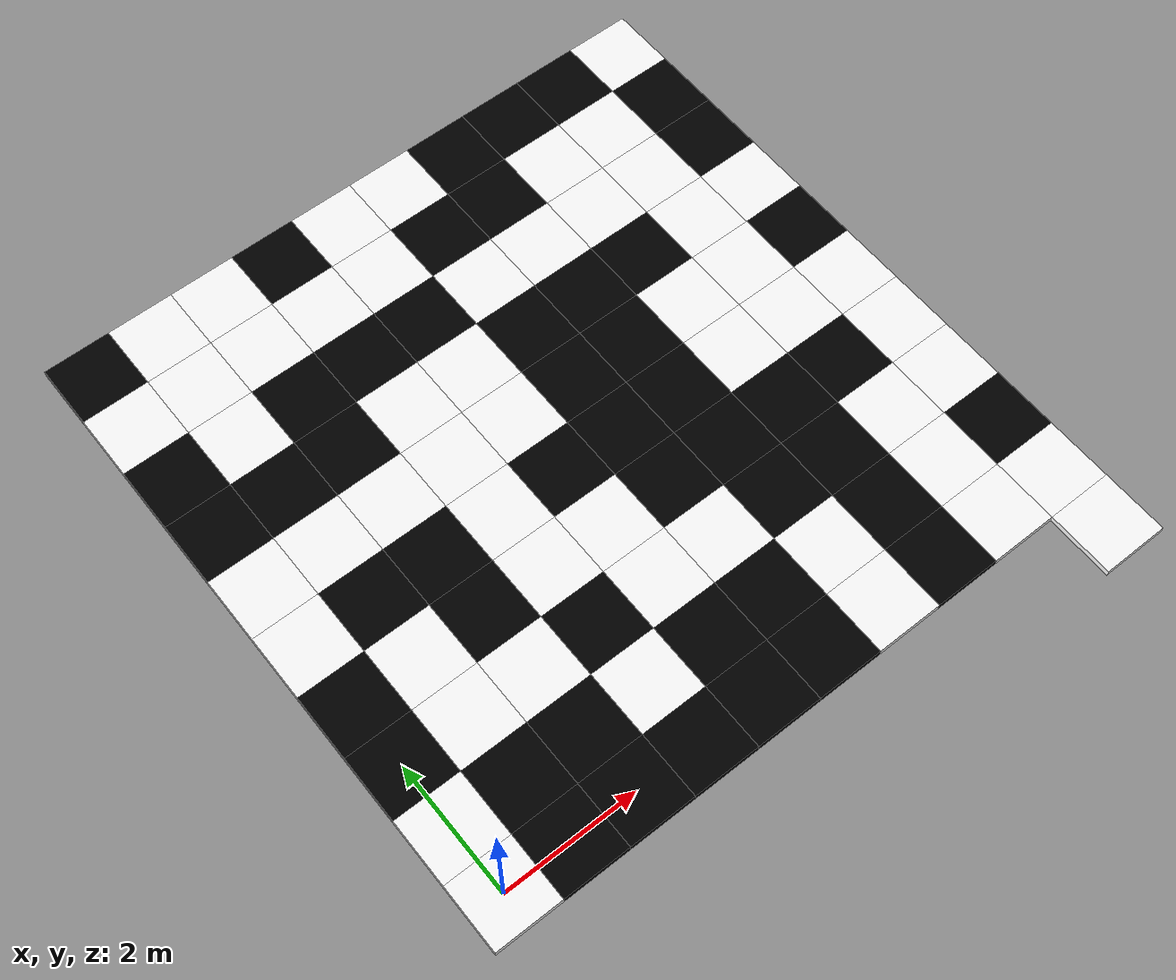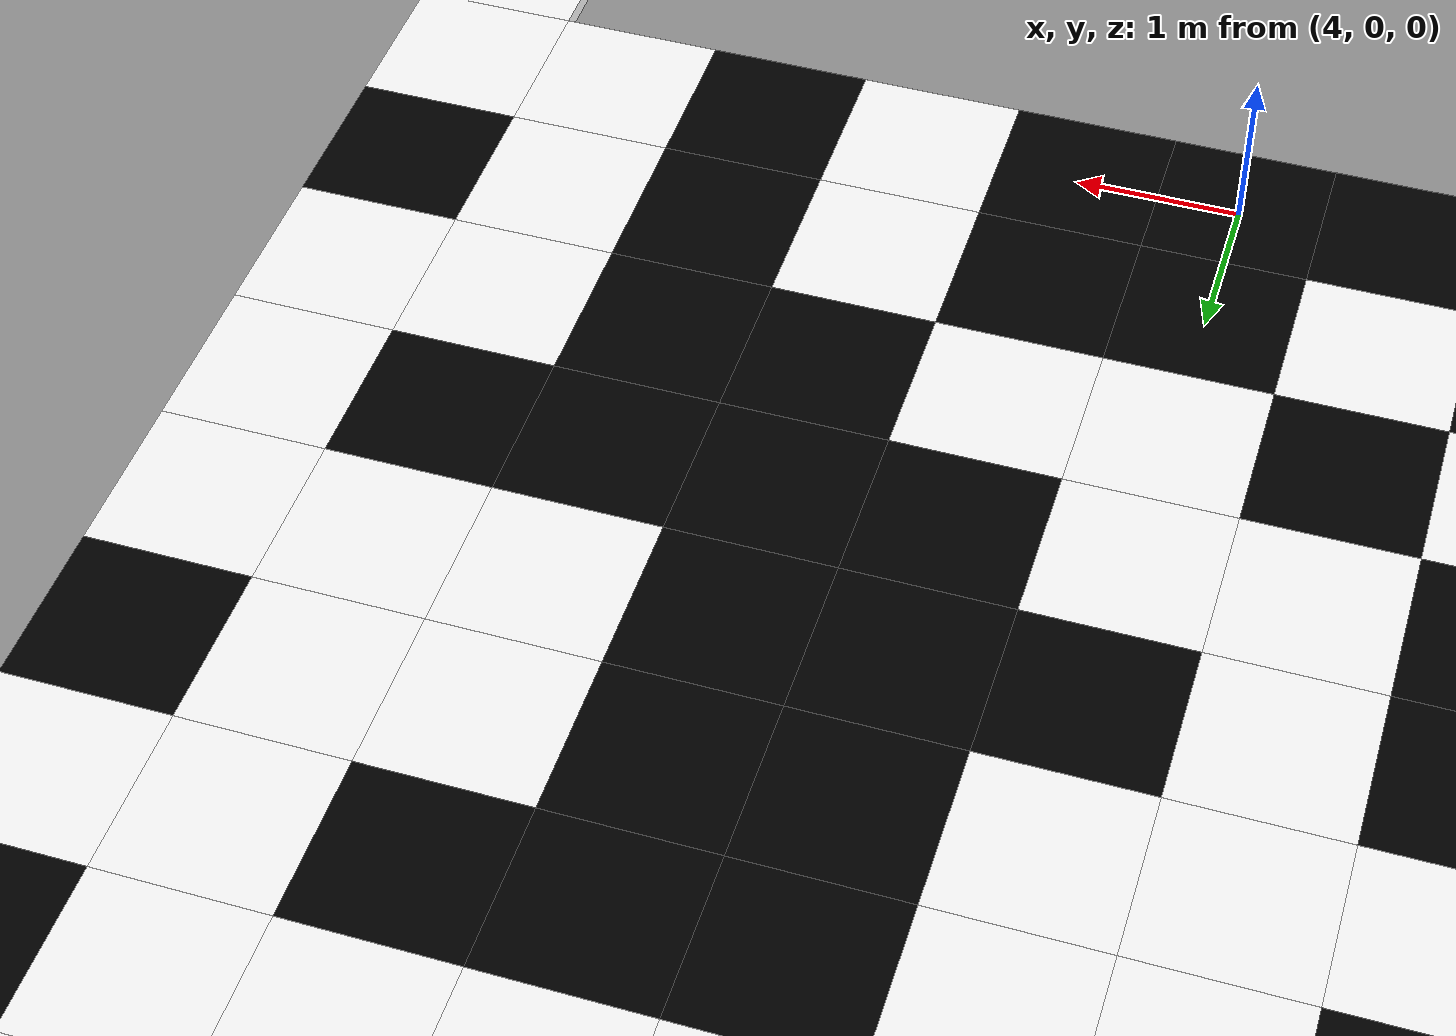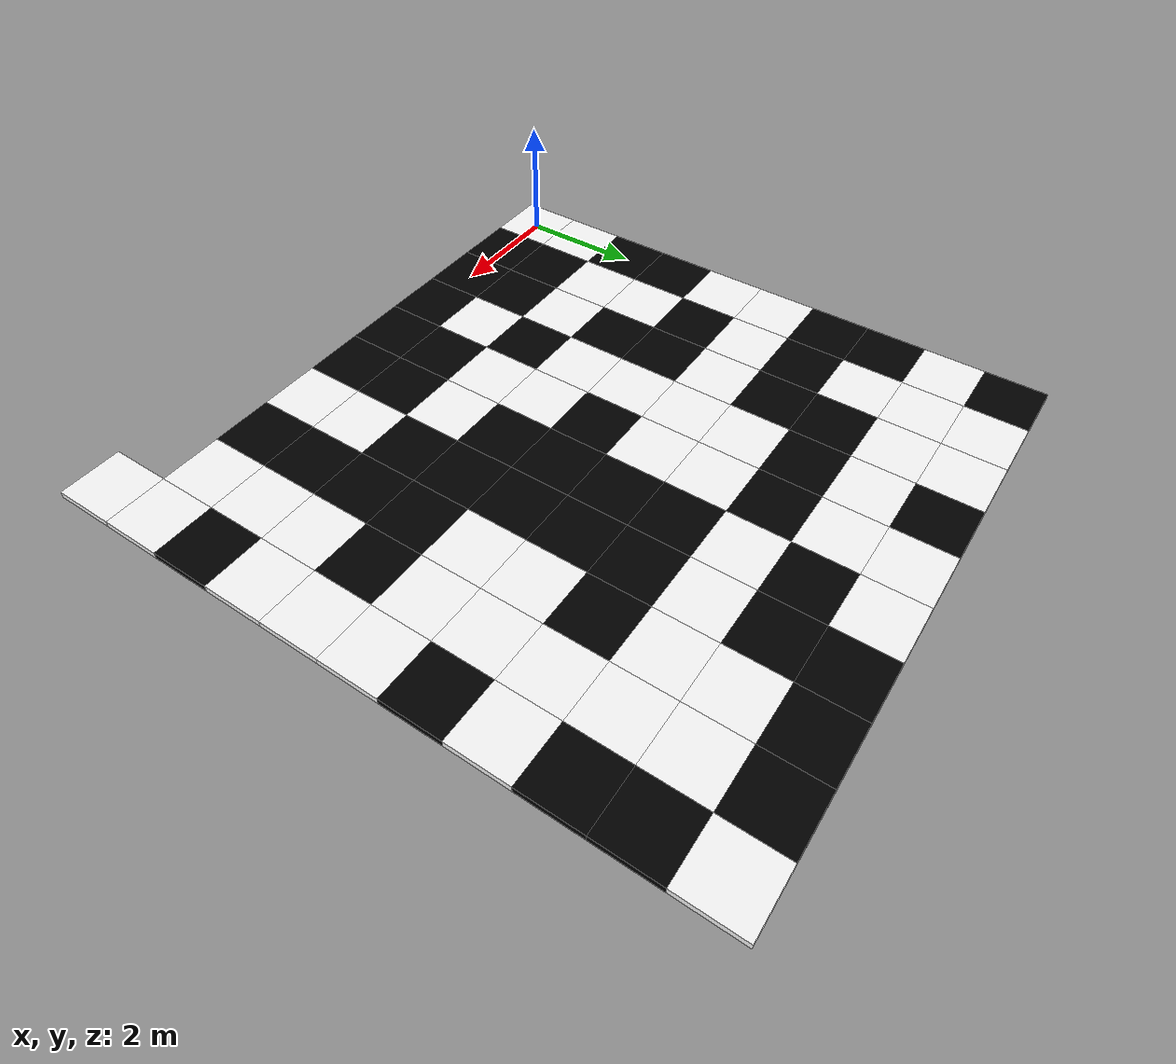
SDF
<sdf version="1.8">
 <world name="collective_perception_task_world">
  <model name="tile_0_0">
   <is_static>true</is_static>
   <link name="link">
    <collision name="collision"><geometry><box><size>1 1 0.1</size></box></geometry></collision>
    <visual name="visual">
     <geometry><box><size>1 1 0.1</size></box></geometry>
     <material><ambient>1 1 1 1</ambient><diffuse>1 1 1 1</diffuse></material>
    </visual>
   </link>
  </model>
  <model name="tile_0_1">
   <is_static>true</is_static>
   <pose>0 1 0 0 0 0</pose>
   <link name="link">
    <collision name="collision"><geometry><box><size>1 1 0.1</size></box></geometry></collision>
    <visual name="visual">
     <geometry><box><size>1 1 0.1</size></box></geometry>
     <material><ambient>1 1 1 1</ambient><diffuse>1 1 1 1</diffuse></material>
    </visual>
   </link>
  </model>
  <model name="tile_0_2">
   <is_static>true</is_static>
   <pose>0 2 0 0 0 0</pose>
   <link name="link">
    <collision name="collision"><geometry><box><size>1 1 0.1</size></box></geometry></collision>
    <visual name="visual">
     <geometry><box><size>1 1 0.1</size></box></geometry>
     <material><ambient>0 0 0 1</ambient><diffuse>0 0 0 1</diffuse></material>
    </visual>
   </link>
  </model>
  <model name="tile_0_3">
   <is_static>true</is_static>
   <pose>0 3 0 0 0 0</pose>
   <link name="link">
    <collision name="collision"><geometry><box><size>1 1 0.1</size></box></geometry></collision>
    <visual name="visual">
     <geometry><box><size>1 1 0.1</size></box></geometry>
     <material><ambient>0 0 0 1</ambient><diffuse>0 0 0 1</diffuse></material>
    </visual>
   </link>
  </model>
  <model name="tile_0_4">
   <is_static>true</is_static>
   <pose>0 4 0 0 0 0</pose>
   <link name="link">
    <collision name="collision"><geometry><box><size>1 1 0.1</size></box></geometry></collision>
    <visual name="visual">
     <geometry><box><size>1 1 0.1</size></box></geometry>
     <material><ambient>1 1 1 1</ambient><diffuse>1 1 1 1</diffuse></material>
    </visual>
   </link>
  </model>
  <model name="tile_0_5">
   <is_static>true</is_static>
   <pose>0 5 0 0 0 0</pose>
   <link name="link">
    <collision name="collision"><geometry><box><size>1 1 0.1</size></box></geometry></collision>
    <visual name="visual">
     <geometry><box><size>1 1 0.1</size></box></geometry>
     <material><ambient>1 1 1 1</ambient><diffuse>1 1 1 1</diffuse></material>
    </visual>
   </link>
  </model>
  <model name="tile_0_6">
   <is_static>true</is_static>
   <pose>0 6 0 0 0 0</pose>
   <link name="link">
    <collision name="collision"><geometry><box><size>1 1 0.1</size></box></geometry></collision>
    <visual name="visual">
     <geometry><box><size>1 1 0.1</size></box></geometry>
     <material><ambient>0 0 0 1</ambient><diffuse>0 0 0 1</diffuse></material>
    </visual>
   </link>
  </model>
  <model name="tile_0_7">
   <is_static>true</is_static>
   <pose>0 7 0 0 0 0</pose>
   <link name="link">
    <collision name="collision"><geometry><box><size>1 1 0.1</size></box></geometry></collision>
    <visual name="visual">
     <geometry><box><size>1 1 0.1</size></box></geometry>
     <material><ambient>0 0 0 1</ambient><diffuse>0 0 0 1</diffuse></material>
    </visual>
   </link>
  </model>
  <model name="tile_0_8">
   <is_static>true</is_static>
   <pose>0 8 0 0 0 0</pose>
   <link name="link">
    <collision name="collision"><geometry><box><size>1 1 0.1</size></box></geometry></collision>
    <visual name="visual">
     <geometry><box><size>1 1 0.1</size></box></geometry>
     <material><ambient>1 1 1 1</ambient><diffuse>1 1 1 1</diffuse></material>
    </visual>
   </link>
  </model>
  <model name="tile_0_9">
   <is_static>true</is_static>
   <pose>0 9 0 0 0 0</pose>
   <link name="link">
    <collision name="collision"><geometry><box><size>1 1 0.1</size></box></geometry></collision>
    <visual name="visual">
     <geometry><box><size>1 1 0.1</size></box></geometry>
     <material><ambient>0 0 0 1</ambient><diffuse>0 0 0 1</diffuse></material>
    </visual>
   </link>
  </model>
  <model name="tile_1_0">
   <is_static>true</is_static>
   <pose>1 0 0 0 0 0</pose>
   <link name="link">
    <collision name="collision"><geometry><box><size>1 1 0.1</size></box></geometry></collision>
    <visual name="visual">
     <geometry><box><size>1 1 0.1</size></box></geometry>
     <material><ambient>0 0 0 1</ambient><diffuse>0 0 0 1</diffuse></material>
    </visual>
   </link>
  </model>
  <model name="tile_1_1">
   <is_static>true</is_static>
   <pose>1 1 0 0 0 0</pose>
   <link name="link">
    <collision name="collision"><geometry><box><size>1 1 0.1</size></box></geometry></collision>
    <visual name="visual">
     <geometry><box><size>1 1 0.1</size></box></geometry>
     <material><ambient>0 0 0 1</ambient><diffuse>0 0 0 1</diffuse></material>
    </visual>
   </link>
  </model>
  <model name="tile_1_2">
   <is_static>true</is_static>
   <pose>1 2 0 0 0 0</pose>
   <link name="link">
    <collision name="collision"><geometry><box><size>1 1 0.1</size></box></geometry></collision>
    <visual name="visual">
     <geometry><box><size>1 1 0.1</size></box></geometry>
     <material><ambient>1 1 1 1</ambient><diffuse>1 1 1 1</diffuse></material>
    </visual>
   </link>
  </model>
  <model name="tile_1_3">
   <is_static>true</is_static>
   <pose>1 3 0 0 0 0</pose>
   <link name="link">
    <collision name="collision"><geometry><box><size>1 1 0.1</size></box></geometry></collision>
    <visual name="visual">
     <geometry><box><size>1 1 0.1</size></box></geometry>
     <material><ambient>1 1 1 1</ambient><diffuse>1 1 1 1</diffuse></material>
    </visual>
   </link>
  </model>
  <model name="tile_1_4">
   <is_static>true</is_static>
   <pose>1 4 0 0 0 0</pose>
   <link name="link">
    <collision name="collision"><geometry><box><size>1 1 0.1</size></box></geometry></collision>
    <visual name="visual">
     <geometry><box><size>1 1 0.1</size></box></geometry>
     <material><ambient>0 0 0 1</ambient><diffuse>0 0 0 1</diffuse></material>
    </visual>
   </link>
  </model>
  <model name="tile_1_5">
   <is_static>true</is_static>
   <pose>1 5 0 0 0 0</pose>
   <link name="link">
    <collision name="collision"><geometry><box><size>1 1 0.1</size></box></geometry></collision>
    <visual name="visual">
     <geometry><box><size>1 1 0.1</size></box></geometry>
     <material><ambient>1 1 1 1</ambient><diffuse>1 1 1 1</diffuse></material>
    </visual>
   </link>
  </model>
  <model name="tile_1_6">
   <is_static>true</is_static>
   <pose>1 6 0 0 0 0</pose>
   <link name="link">
    <collision name="collision"><geometry><box><size>1 1 0.1</size></box></geometry></collision>
    <visual name="visual">
     <geometry><box><size>1 1 0.1</size></box></geometry>
     <material><ambient>0 0 0 1</ambient><diffuse>0 0 0 1</diffuse></material>
    </visual>
   </link>
  </model>
  <model name="tile_1_7">
   <is_static>true</is_static>
   <pose>1 7 0 0 0 0</pose>
   <link name="link">
    <collision name="collision"><geometry><box><size>1 1 0.1</size></box></geometry></collision>
    <visual name="visual">
     <geometry><box><size>1 1 0.1</size></box></geometry>
     <material><ambient>1 1 1 1</ambient><diffuse>1 1 1 1</diffuse></material>
    </visual>
   </link>
  </model>
  <model name="tile_1_8">
   <is_static>true</is_static>
   <pose>1 8 0 0 0 0</pose>
   <link name="link">
    <collision name="collision"><geometry><box><size>1 1 0.1</size></box></geometry></collision>
    <visual name="visual">
     <geometry><box><size>1 1 0.1</size></box></geometry>
     <material><ambient>1 1 1 1</ambient><diffuse>1 1 1 1</diffuse></material>
    </visual>
   </link>
  </model>
  <model name="tile_1_9">
   <is_static>true</is_static>
   <pose>1 9 0 0 0 0</pose>
   <link name="link">
    <collision name="collision"><geometry><box><size>1 1 0.1</size></box></geometry></collision>
    <visual name="visual">
     <geometry><box><size>1 1 0.1</size></box></geometry>
     <material><ambient>1 1 1 1</ambient><diffuse>1 1 1 1</diffuse></material>
    </visual>
   </link>
  </model>
  <model name="tile_2_0">
   <is_static>true</is_static>
   <pose>2 0 0 0 0 0</pose>
   <link name="link">
    <collision name="collision"><geometry><box><size>1 1 0.1</size></box></geometry></collision>
    <visual name="visual">
     <geometry><box><size>1 1 0.1</size></box></geometry>
     <material><ambient>0 0 0 1</ambient><diffuse>0 0 0 1</diffuse></material>
    </visual>
   </link>
  </model>
  <model name="tile_2_1">
   <is_static>true</is_static>
   <pose>2 1 0 0 0 0</pose>
   <link name="link">
    <collision name="collision"><geometry><box><size>1 1 0.1</size></box></geometry></collision>
    <visual name="visual">
     <geometry><box><size>1 1 0.1</size></box></geometry>
     <material><ambient>0 0 0 1</ambient><diffuse>0 0 0 1</diffuse></material>
    </visual>
   </link>
  </model>
  <model name="tile_2_2">
   <is_static>true</is_static>
   <pose>2 2 0 0 0 0</pose>
   <link name="link">
    <collision name="collision"><geometry><box><size>1 1 0.1</size></box></geometry></collision>
    <visual name="visual">
     <geometry><box><size>1 1 0.1</size></box></geometry>
     <material><ambient>1 1 1 1</ambient><diffuse>1 1 1 1</diffuse></material>
    </visual>
   </link>
  </model>
  <model name="tile_2_3">
   <is_static>true</is_static>
   <pose>2 3 0 0 0 0</pose>
   <link name="link">
    <collision name="collision"><geometry><box><size>1 1 0.1</size></box></geometry></collision>
    <visual name="visual">
     <geometry><box><size>1 1 0.1</size></box></geometry>
     <material><ambient>0 0 0 1</ambient><diffuse>0 0 0 1</diffuse></material>
    </visual>
   </link>
  </model>
  <model name="tile_2_4">
   <is_static>true</is_static>
   <pose>2 4 0 0 0 0</pose>
   <link name="link">
    <collision name="collision"><geometry><box><size>1 1 0.1</size></box></geometry></collision>
    <visual name="visual">
     <geometry><box><size>1 1 0.1</size></box></geometry>
     <material><ambient>0 0 0 1</ambient><diffuse>0 0 0 1</diffuse></material>
    </visual>
   </link>
  </model>
  <model name="tile_2_5">
   <is_static>true</is_static>
   <pose>2 5 0 0 0 0</pose>
   <link name="link">
    <collision name="collision"><geometry><box><size>1 1 0.1</size></box></geometry></collision>
    <visual name="visual">
     <geometry><box><size>1 1 0.1</size></box></geometry>
     <material><ambient>1 1 1 1</ambient><diffuse>1 1 1 1</diffuse></material>
    </visual>
   </link>
  </model>
  <model name="tile_2_6">
   <is_static>true</is_static>
   <pose>2 6 0 0 0 0</pose>
   <link name="link">
    <collision name="collision"><geometry><box><size>1 1 0.1</size></box></geometry></collision>
    <visual name="visual">
     <geometry><box><size>1 1 0.1</size></box></geometry>
     <material><ambient>0 0 0 1</ambient><diffuse>0 0 0 1</diffuse></material>
    </visual>
   </link>
  </model>
  <model name="tile_2_7">
   <is_static>true</is_static>
   <pose>2 7 0 0 0 0</pose>
   <link name="link">
    <collision name="collision"><geometry><box><size>1 1 0.1</size></box></geometry></collision>
    <visual name="visual">
     <geometry><box><size>1 1 0.1</size></box></geometry>
     <material><ambient>0 0 0 1</ambient><diffuse>0 0 0 1</diffuse></material>
    </visual>
   </link>
  </model>
  <model name="tile_2_8">
   <is_static>true</is_static>
   <pose>2 8 0 0 0 0</pose>
   <link name="link">
    <collision name="collision"><geometry><box><size>1 1 0.1</size></box></geometry></collision>
    <visual name="visual">
     <geometry><box><size>1 1 0.1</size></box></geometry>
     <material><ambient>1 1 1 1</ambient><diffuse>1 1 1 1</diffuse></material>
    </visual>
   </link>
  </model>
  <model name="tile_2_9">
   <is_static>true</is_static>
   <pose>2 9 0 0 0 0</pose>
   <link name="link">
    <collision name="collision"><geometry><box><size>1 1 0.1</size></box></geometry></collision>
    <visual name="visual">
     <geometry><box><size>1 1 0.1</size></box></geometry>
     <material><ambient>1 1 1 1</ambient><diffuse>1 1 1 1</diffuse></material>
    </visual>
   </link>
  </model>
  <model name="tile_3_0">
   <is_static>true</is_static>
   <pose>3 0 0 0 0 0</pose>
   <link name="link">
    <collision name="collision"><geometry><box><size>1 1 0.1</size></box></geometry></collision>
    <visual name="visual">
     <geometry><box><size>1 1 0.1</size></box></geometry>
     <material><ambient>0 0 0 1</ambient><diffuse>0 0 0 1</diffuse></material>
    </visual>
   </link>
  </model>
  <model name="tile_3_1">
   <is_static>true</is_static>
   <pose>3 1 0 0 0 0</pose>
   <link name="link">
    <collision name="collision"><geometry><box><size>1 1 0.1</size></box></geometry></collision>
    <visual name="visual">
     <geometry><box><size>1 1 0.1</size></box></geometry>
     <material><ambient>1 1 1 1</ambient><diffuse>1 1 1 1</diffuse></material>
    </visual>
   </link>
  </model>
  <model name="tile_3_2">
   <is_static>true</is_static>
   <pose>3 2 0 0 0 0</pose>
   <link name="link">
    <collision name="collision"><geometry><box><size>1 1 0.1</size></box></geometry></collision>
    <visual name="visual">
     <geometry><box><size>1 1 0.1</size></box></geometry>
     <material><ambient>0 0 0 1</ambient><diffuse>0 0 0 1</diffuse></material>
    </visual>
   </link>
  </model>
  <model name="tile_3_3">
   <is_static>true</is_static>
   <pose>3 3 0 0 0 0</pose>
   <link name="link">
    <collision name="collision"><geometry><box><size>1 1 0.1</size></box></geometry></collision>
    <visual name="visual">
     <geometry><box><size>1 1 0.1</size></box></geometry>
     <material><ambient>1 1 1 1</ambient><diffuse>1 1 1 1</diffuse></material>
    </visual>
   </link>
  </model>
  <model name="tile_3_4">
   <is_static>true</is_static>
   <pose>3 4 0 0 0 0</pose>
   <link name="link">
    <collision name="collision"><geometry><box><size>1 1 0.1</size></box></geometry></collision>
    <visual name="visual">
     <geometry><box><size>1 1 0.1</size></box></geometry>
     <material><ambient>1 1 1 1</ambient><diffuse>1 1 1 1</diffuse></material>
    </visual>
   </link>
  </model>
  <model name="tile_3_5">
   <is_static>true</is_static>
   <pose>3 5 0 0 0 0</pose>
   <link name="link">
    <collision name="collision"><geometry><box><size>1 1 0.1</size></box></geometry></collision>
    <visual name="visual">
     <geometry><box><size>1 1 0.1</size></box></geometry>
     <material><ambient>1 1 1 1</ambient><diffuse>1 1 1 1</diffuse></material>
    </visual>
   </link>
  </model>
  <model name="tile_3_6">
   <is_static>true</is_static>
   <pose>3 6 0 0 0 0</pose>
   <link name="link">
    <collision name="collision"><geometry><box><size>1 1 0.1</size></box></geometry></collision>
    <visual name="visual">
     <geometry><box><size>1 1 0.1</size></box></geometry>
     <material><ambient>1 1 1 1</ambient><diffuse>1 1 1 1</diffuse></material>
    </visual>
   </link>
  </model>
  <model name="tile_3_7">
   <is_static>true</is_static>
   <pose>3 7 0 0 0 0</pose>
   <link name="link">
    <collision name="collision"><geometry><box><size>1 1 0.1</size></box></geometry></collision>
    <visual name="visual">
     <geometry><box><size>1 1 0.1</size></box></geometry>
     <material><ambient>0 0 0 1</ambient><diffuse>0 0 0 1</diffuse></material>
    </visual>
   </link>
  </model>
  <model name="tile_3_8">
   <is_static>true</is_static>
   <pose>3 8 0 0 0 0</pose>
   <link name="link">
    <collision name="collision"><geometry><box><size>1 1 0.1</size></box></geometry></collision>
    <visual name="visual">
     <geometry><box><size>1 1 0.1</size></box></geometry>
     <material><ambient>1 1 1 1</ambient><diffuse>1 1 1 1</diffuse></material>
    </visual>
   </link>
  </model>
  <model name="tile_3_9">
   <is_static>true</is_static>
   <pose>3 9 0 0 0 0</pose>
   <link name="link">
    <collision name="collision"><geometry><box><size>1 1 0.1</size></box></geometry></collision>
    <visual name="visual">
     <geometry><box><size>1 1 0.1</size></box></geometry>
     <material><ambient>0 0 0 1</ambient><diffuse>0 0 0 1</diffuse></material>
    </visual>
   </link>
  </model>
  <model name="tile_4_0">
   <is_static>true</is_static>
   <pose>4 0 0 0 0 0</pose>
   <link name="link">
    <collision name="collision"><geometry><box><size>1 1 0.1</size></box></geometry></collision>
    <visual name="visual">
     <geometry><box><size>1 1 0.1</size></box></geometry>
     <material><ambient>0 0 0 1</ambient><diffuse>0 0 0 1</diffuse></material>
    </visual>
   </link>
  </model>
  <model name="tile_4_1">
   <is_static>true</is_static>
   <pose>4 1 0 0 0 0</pose>
   <link name="link">
    <collision name="collision"><geometry><box><size>1 1 0.1</size></box></geometry></collision>
    <visual name="visual">
     <geometry><box><size>1 1 0.1</size></box></geometry>
     <material><ambient>0 0 0 1</ambient><diffuse>0 0 0 1</diffuse></material>
    </visual>
   </link>
  </model>
  <model name="tile_4_2">
   <is_static>true</is_static>
   <pose>4 2 0 0 0 0</pose>
   <link name="link">
    <collision name="collision"><geometry><box><size>1 1 0.1</size></box></geometry></collision>
    <visual name="visual">
     <geometry><box><size>1 1 0.1</size></box></geometry>
     <material><ambient>1 1 1 1</ambient><diffuse>1 1 1 1</diffuse></material>
    </visual>
   </link>
  </model>
  <model name="tile_4_3">
   <is_static>true</is_static>
   <pose>4 3 0 0 0 0</pose>
   <link name="link">
    <collision name="collision"><geometry><box><size>1 1 0.1</size></box></geometry></collision>
    <visual name="visual">
     <geometry><box><size>1 1 0.1</size></box></geometry>
     <material><ambient>1 1 1 1</ambient><diffuse>1 1 1 1</diffuse></material>
    </visual>
   </link>
  </model>
  <model name="tile_4_4">
   <is_static>true</is_static>
   <pose>4 4 0 0 0 0</pose>
   <link name="link">
    <collision name="collision"><geometry><box><size>1 1 0.1</size></box></geometry></collision>
    <visual name="visual">
     <geometry><box><size>1 1 0.1</size></box></geometry>
     <material><ambient>0 0 0 1</ambient><diffuse>0 0 0 1</diffuse></material>
    </visual>
   </link>
  </model>
  <model name="tile_4_5">
   <is_static>true</is_static>
   <pose>4 5 0 0 0 0</pose>
   <link name="link">
    <collision name="collision"><geometry><box><size>1 1 0.1</size></box></geometry></collision>
    <visual name="visual">
     <geometry><box><size>1 1 0.1</size></box></geometry>
     <material><ambient>1 1 1 1</ambient><diffuse>1 1 1 1</diffuse></material>
    </visual>
   </link>
  </model>
  <model name="tile_4_6">
   <is_static>true</is_static>
   <pose>4 6 0 0 0 0</pose>
   <link name="link">
    <collision name="collision"><geometry><box><size>1 1 0.1</size></box></geometry></collision>
    <visual name="visual">
     <geometry><box><size>1 1 0.1</size></box></geometry>
     <material><ambient>1 1 1 1</ambient><diffuse>1 1 1 1</diffuse></material>
    </visual>
   </link>
  </model>
  <model name="tile_4_7">
   <is_static>true</is_static>
   <pose>4 7 0 0 0 0</pose>
   <link name="link">
    <collision name="collision"><geometry><box><size>1 1 0.1</size></box></geometry></collision>
    <visual name="visual">
     <geometry><box><size>1 1 0.1</size></box></geometry>
     <material><ambient>0 0 0 1</ambient><diffuse>0 0 0 1</diffuse></material>
    </visual>
   </link>
  </model>
  <model name="tile_4_8">
   <is_static>true</is_static>
   <pose>4 8 0 0 0 0</pose>
   <link name="link">
    <collision name="collision"><geometry><box><size>1 1 0.1</size></box></geometry></collision>
    <visual name="visual">
     <geometry><box><size>1 1 0.1</size></box></geometry>
     <material><ambient>1 1 1 1</ambient><diffuse>1 1 1 1</diffuse></material>
    </visual>
   </link>
  </model>
  <model name="tile_4_9">
   <is_static>true</is_static>
   <pose>4 9 0 0 0 0</pose>
   <link name="link">
    <collision name="collision"><geometry><box><size>1 1 0.1</size></box></geometry></collision>
    <visual name="visual">
     <geometry><box><size>1 1 0.1</size></box></geometry>
     <material><ambient>1 1 1 1</ambient><diffuse>1 1 1 1</diffuse></material>
    </visual>
   </link>
  </model>
  <model name="tile_5_0">
   <is_static>true</is_static>
   <pose>5 0 0 0 0 0</pose>
   <link name="link">
    <collision name="collision"><geometry><box><size>1 1 0.1</size></box></geometry></collision>
    <visual name="visual">
     <geometry><box><size>1 1 0.1</size></box></geometry>
     <material><ambient>0 0 0 1</ambient><diffuse>0 0 0 1</diffuse></material>
    </visual>
   </link>
  </model>
  <model name="tile_5_1">
   <is_static>true</is_static>
   <pose>5 1 0 0 0 0</pose>
   <link name="link">
    <collision name="collision"><geometry><box><size>1 1 0.1</size></box></geometry></collision>
    <visual name="visual">
     <geometry><box><size>1 1 0.1</size></box></geometry>
     <material><ambient>0 0 0 1</ambient><diffuse>0 0 0 1</diffuse></material>
    </visual>
   </link>
  </model>
  <model name="tile_5_2">
   <is_static>true</is_static>
   <pose>5 2 0 0 0 0</pose>
   <link name="link">
    <collision name="collision"><geometry><box><size>1 1 0.1</size></box></geometry></collision>
    <visual name="visual">
     <geometry><box><size>1 1 0.1</size></box></geometry>
     <material><ambient>1 1 1 1</ambient><diffuse>1 1 1 1</diffuse></material>
    </visual>
   </link>
  </model>
  <model name="tile_5_3">
   <is_static>true</is_static>
   <pose>5 3 0 0 0 0</pose>
   <link name="link">
    <collision name="collision"><geometry><box><size>1 1 0.1</size></box></geometry></collision>
    <visual name="visual">
     <geometry><box><size>1 1 0.1</size></box></geometry>
     <material><ambient>0 0 0 1</ambient><diffuse>0 0 0 1</diffuse></material>
    </visual>
   </link>
  </model>
  <model name="tile_5_4">
   <is_static>true</is_static>
   <pose>5 4 0 0 0 0</pose>
   <link name="link">
    <collision name="collision"><geometry><box><size>1 1 0.1</size></box></geometry></collision>
    <visual name="visual">
     <geometry><box><size>1 1 0.1</size></box></geometry>
     <material><ambient>0 0 0 1</ambient><diffuse>0 0 0 1</diffuse></material>
    </visual>
   </link>
  </model>
  <model name="tile_5_5">
   <is_static>true</is_static>
   <pose>5 5 0 0 0 0</pose>
   <link name="link">
    <collision name="collision"><geometry><box><size>1 1 0.1</size></box></geometry></collision>
    <visual name="visual">
     <geometry><box><size>1 1 0.1</size></box></geometry>
     <material><ambient>0 0 0 1</ambient><diffuse>0 0 0 1</diffuse></material>
    </visual>
   </link>
  </model>
  <model name="tile_5_6">
   <is_static>true</is_static>
   <pose>5 6 0 0 0 0</pose>
   <link name="link">
    <collision name="collision"><geometry><box><size>1 1 0.1</size></box></geometry></collision>
    <visual name="visual">
     <geometry><box><size>1 1 0.1</size></box></geometry>
     <material><ambient>0 0 0 1</ambient><diffuse>0 0 0 1</diffuse></material>
    </visual>
   </link>
  </model>
  <model name="tile_5_7">
   <is_static>true</is_static>
   <pose>5 7 0 0 0 0</pose>
   <link name="link">
    <collision name="collision"><geometry><box><size>1 1 0.1</size></box></geometry></collision>
    <visual name="visual">
     <geometry><box><size>1 1 0.1</size></box></geometry>
     <material><ambient>1 1 1 1</ambient><diffuse>1 1 1 1</diffuse></material>
    </visual>
   </link>
  </model>
  <model name="tile_5_8">
   <is_static>true</is_static>
   <pose>5 8 0 0 0 0</pose>
   <link name="link">
    <collision name="collision"><geometry><box><size>1 1 0.1</size></box></geometry></collision>
    <visual name="visual">
     <geometry><box><size>1 1 0.1</size></box></geometry>
     <material><ambient>0 0 0 1</ambient><diffuse>0 0 0 1</diffuse></material>
    </visual>
   </link>
  </model>
  <model name="tile_5_9">
   <is_static>true</is_static>
   <pose>5 9 0 0 0 0</pose>
   <link name="link">
    <collision name="collision"><geometry><box><size>1 1 0.1</size></box></geometry></collision>
    <visual name="visual">
     <geometry><box><size>1 1 0.1</size></box></geometry>
     <material><ambient>1 1 1 1</ambient><diffuse>1 1 1 1</diffuse></material>
    </visual>
   </link>
  </model>
  <model name="tile_6_0">
   <is_static>true</is_static>
   <pose>6 0 0 0 0 0</pose>
   <link name="link">
    <collision name="collision"><geometry><box><size>1 1 0.1</size></box></geometry></collision>
    <visual name="visual">
     <geometry><box><size>1 1 0.1</size></box></geometry>
     <material><ambient>1 1 1 1</ambient><diffuse>1 1 1 1</diffuse></material>
    </visual>
   </link>
  </model>
  <model name="tile_6_1">
   <is_static>true</is_static>
   <pose>6 1 0 0 0 0</pose>
   <link name="link">
    <collision name="collision"><geometry><box><size>1 1 0.1</size></box></geometry></collision>
    <visual name="visual">
     <geometry><box><size>1 1 0.1</size></box></geometry>
     <material><ambient>1 1 1 1</ambient><diffuse>1 1 1 1</diffuse></material>
    </visual>
   </link>
  </model>
  <model name="tile_6_2">
   <is_static>true</is_static>
   <pose>6 2 0 0 0 0</pose>
   <link name="link">
    <collision name="collision"><geometry><box><size>1 1 0.1</size></box></geometry></collision>
    <visual name="visual">
     <geometry><box><size>1 1 0.1</size></box></geometry>
     <material><ambient>0 0 0 1</ambient><diffuse>0 0 0 1</diffuse></material>
    </visual>
   </link>
  </model>
  <model name="tile_6_3">
   <is_static>true</is_static>
   <pose>6 3 0 0 0 0</pose>
   <link name="link">
    <collision name="collision"><geometry><box><size>1 1 0.1</size></box></geometry></collision>
    <visual name="visual">
     <geometry><box><size>1 1 0.1</size></box></geometry>
     <material><ambient>0 0 0 1</ambient><diffuse>0 0 0 1</diffuse></material>
    </visual>
   </link>
  </model>
  <model name="tile_6_4">
   <is_static>true</is_static>
   <pose>6 4 0 0 0 0</pose>
   <link name="link">
    <collision name="collision"><geometry><box><size>1 1 0.1</size></box></geometry></collision>
    <visual name="visual">
     <geometry><box><size>1 1 0.1</size></box></geometry>
     <material><ambient>0 0 0 1</ambient><diffuse>0 0 0 1</diffuse></material>
    </visual>
   </link>
  </model>
  <model name="tile_6_5">
   <is_static>true</is_static>
   <pose>6 5 0 0 0 0</pose>
   <link name="link">
    <collision name="collision"><geometry><box><size>1 1 0.1</size></box></geometry></collision>
    <visual name="visual">
     <geometry><box><size>1 1 0.1</size></box></geometry>
     <material><ambient>0 0 0 1</ambient><diffuse>0 0 0 1</diffuse></material>
    </visual>
   </link>
  </model>
  <model name="tile_6_6">
   <is_static>true</is_static>
   <pose>6 6 0 0 0 0</pose>
   <link name="link">
    <collision name="collision"><geometry><box><size>1 1 0.1</size></box></geometry></collision>
    <visual name="visual">
     <geometry><box><size>1 1 0.1</size></box></geometry>
     <material><ambient>0 0 0 1</ambient><diffuse>0 0 0 1</diffuse></material>
    </visual>
   </link>
  </model>
  <model name="tile_6_7">
   <is_static>true</is_static>
   <pose>6 7 0 0 0 0</pose>
   <link name="link">
    <collision name="collision"><geometry><box><size>1 1 0.1</size></box></geometry></collision>
    <visual name="visual">
     <geometry><box><size>1 1 0.1</size></box></geometry>
     <material><ambient>1 1 1 1</ambient><diffuse>1 1 1 1</diffuse></material>
    </visual>
   </link>
  </model>
  <model name="tile_6_8">
   <is_static>true</is_static>
   <pose>6 8 0 0 0 0</pose>
   <link name="link">
    <collision name="collision"><geometry><box><size>1 1 0.1</size></box></geometry></collision>
    <visual name="visual">
     <geometry><box><size>1 1 0.1</size></box></geometry>
     <material><ambient>0 0 0 1</ambient><diffuse>0 0 0 1</diffuse></material>
    </visual>
   </link>
  </model>
  <model name="tile_6_9">
   <is_static>true</is_static>
   <pose>6 9 0 0 0 0</pose>
   <link name="link">
    <collision name="collision"><geometry><box><size>1 1 0.1</size></box></geometry></collision>
    <visual name="visual">
     <geometry><box><size>1 1 0.1</size></box></geometry>
     <material><ambient>0 0 0 1</ambient><diffuse>0 0 0 1</diffuse></material>
    </visual>
   </link>
  </model>
  <model name="tile_7_0">
   <is_static>true</is_static>
   <pose>7 0 0 0 0 0</pose>
   <link name="link">
    <collision name="collision"><geometry><box><size>1 1 0.1</size></box></geometry></collision>
    <visual name="visual">
     <geometry><box><size>1 1 0.1</size></box></geometry>
     <material><ambient>0 0 0 1</ambient><diffuse>0 0 0 1</diffuse></material>
    </visual>
   </link>
  </model>
  <model name="tile_7_1">
   <is_static>true</is_static>
   <pose>7 1 0 0 0 0</pose>
   <link name="link">
    <collision name="collision"><geometry><box><size>1 1 0.1</size></box></geometry></collision>
    <visual name="visual">
     <geometry><box><size>1 1 0.1</size></box></geometry>
     <material><ambient>0 0 0 1</ambient><diffuse>0 0 0 1</diffuse></material>
    </visual>
   </link>
  </model>
  <model name="tile_7_2">
   <is_static>true</is_static>
   <pose>7 2 0 0 0 0</pose>
   <link name="link">
    <collision name="collision"><geometry><box><size>1 1 0.1</size></box></geometry></collision>
    <visual name="visual">
     <geometry><box><size>1 1 0.1</size></box></geometry>
     <material><ambient>0 0 0 1</ambient><diffuse>0 0 0 1</diffuse></material>
    </visual>
   </link>
  </model>
  <model name="tile_7_3">
   <is_static>true</is_static>
   <pose>7 3 0 0 0 0</pose>
   <link name="link">
    <collision name="collision"><geometry><box><size>1 1 0.1</size></box></geometry></collision>
    <visual name="visual">
     <geometry><box><size>1 1 0.1</size></box></geometry>
     <material><ambient>0 0 0 1</ambient><diffuse>0 0 0 1</diffuse></material>
    </visual>
   </link>
  </model>
  <model name="tile_7_4">
   <is_static>true</is_static>
   <pose>7 4 0 0 0 0</pose>
   <link name="link">
    <collision name="collision"><geometry><box><size>1 1 0.1</size></box></geometry></collision>
    <visual name="visual">
     <geometry><box><size>1 1 0.1</size></box></geometry>
     <material><ambient>1 1 1 1</ambient><diffuse>1 1 1 1</diffuse></material>
    </visual>
   </link>
  </model>
  <model name="tile_7_5">
   <is_static>true</is_static>
   <pose>7 5 0 0 0 0</pose>
   <link name="link">
    <collision name="collision"><geometry><box><size>1 1 0.1</size></box></geometry></collision>
    <visual name="visual">
     <geometry><box><size>1 1 0.1</size></box></geometry>
     <material><ambient>1 1 1 1</ambient><diffuse>1 1 1 1</diffuse></material>
    </visual>
   </link>
  </model>
  <model name="tile_7_6">
   <is_static>true</is_static>
   <pose>7 6 0 0 0 0</pose>
   <link name="link">
    <collision name="collision"><geometry><box><size>1 1 0.1</size></box></geometry></collision>
    <visual name="visual">
     <geometry><box><size>1 1 0.1</size></box></geometry>
     <material><ambient>0 0 0 1</ambient><diffuse>0 0 0 1</diffuse></material>
    </visual>
   </link>
  </model>
  <model name="tile_7_7">
   <is_static>true</is_static>
   <pose>7 7 0 0 0 0</pose>
   <link name="link">
    <collision name="collision"><geometry><box><size>1 1 0.1</size></box></geometry></collision>
    <visual name="visual">
     <geometry><box><size>1 1 0.1</size></box></geometry>
     <material><ambient>1 1 1 1</ambient><diffuse>1 1 1 1</diffuse></material>
    </visual>
   </link>
  </model>
  <model name="tile_7_8">
   <is_static>true</is_static>
   <pose>7 8 0 0 0 0</pose>
   <link name="link">
    <collision name="collision"><geometry><box><size>1 1 0.1</size></box></geometry></collision>
    <visual name="visual">
     <geometry><box><size>1 1 0.1</size></box></geometry>
     <material><ambient>1 1 1 1</ambient><diffuse>1 1 1 1</diffuse></material>
    </visual>
   </link>
  </model>
  <model name="tile_7_9">
   <is_static>true</is_static>
   <pose>7 9 0 0 0 0</pose>
   <link name="link">
    <collision name="collision"><geometry><box><size>1 1 0.1</size></box></geometry></collision>
    <visual name="visual">
     <geometry><box><size>1 1 0.1</size></box></geometry>
     <material><ambient>0 0 0 1</ambient><diffuse>0 0 0 1</diffuse></material>
    </visual>
   </link>
  </model>
  <model name="tile_8_0">
   <is_static>true</is_static>
   <pose>8 0 0 0 0 0</pose>
   <link name="link">
    <collision name="collision"><geometry><box><size>1 1 0.1</size></box></geometry></collision>
    <visual name="visual">
     <geometry><box><size>1 1 0.1</size></box></geometry>
     <material><ambient>1 1 1 1</ambient><diffuse>1 1 1 1</diffuse></material>
    </visual>
   </link>
  </model>
  <model name="tile_8_1">
   <is_static>true</is_static>
   <pose>8 1 0 0 0 0</pose>
   <link name="link">
    <collision name="collision"><geometry><box><size>1 1 0.1</size></box></geometry></collision>
    <visual name="visual">
     <geometry><box><size>1 1 0.1</size></box></geometry>
     <material><ambient>1 1 1 1</ambient><diffuse>1 1 1 1</diffuse></material>
    </visual>
   </link>
  </model>
  <model name="tile_8_2">
   <is_static>true</is_static>
   <pose>8 2 0 0 0 0</pose>
   <link name="link">
    <collision name="collision"><geometry><box><size>1 1 0.1</size></box></geometry></collision>
    <visual name="visual">
     <geometry><box><size>1 1 0.1</size></box></geometry>
     <material><ambient>1 1 1 1</ambient><diffuse>1 1 1 1</diffuse></material>
    </visual>
   </link>
  </model>
  <model name="tile_8_3">
   <is_static>true</is_static>
   <pose>8 3 0 0 0 0</pose>
   <link name="link">
    <collision name="collision"><geometry><box><size>1 1 0.1</size></box></geometry></collision>
    <visual name="visual">
     <geometry><box><size>1 1 0.1</size></box></geometry>
     <material><ambient>0 0 0 1</ambient><diffuse>0 0 0 1</diffuse></material>
    </visual>
   </link>
  </model>
  <model name="tile_8_4">
   <is_static>true</is_static>
   <pose>8 4 0 0 0 0</pose>
   <link name="link">
    <collision name="collision"><geometry><box><size>1 1 0.1</size></box></geometry></collision>
    <visual name="visual">
     <geometry><box><size>1 1 0.1</size></box></geometry>
     <material><ambient>1 1 1 1</ambient><diffuse>1 1 1 1</diffuse></material>
    </visual>
   </link>
  </model>
  <model name="tile_8_5">
   <is_static>true</is_static>
   <pose>8 5 0 0 0 0</pose>
   <link name="link">
    <collision name="collision"><geometry><box><size>1 1 0.1</size></box></geometry></collision>
    <visual name="visual">
     <geometry><box><size>1 1 0.1</size></box></geometry>
     <material><ambient>1 1 1 1</ambient><diffuse>1 1 1 1</diffuse></material>
    </visual>
   </link>
  </model>
  <model name="tile_8_6">
   <is_static>true</is_static>
   <pose>8 6 0 0 0 0</pose>
   <link name="link">
    <collision name="collision"><geometry><box><size>1 1 0.1</size></box></geometry></collision>
    <visual name="visual">
     <geometry><box><size>1 1 0.1</size></box></geometry>
     <material><ambient>1 1 1 1</ambient><diffuse>1 1 1 1</diffuse></material>
    </visual>
   </link>
  </model>
  <model name="tile_8_7">
   <is_static>true</is_static>
   <pose>8 7 0 0 0 0</pose>
   <link name="link">
    <collision name="collision"><geometry><box><size>1 1 0.1</size></box></geometry></collision>
    <visual name="visual">
     <geometry><box><size>1 1 0.1</size></box></geometry>
     <material><ambient>1 1 1 1</ambient><diffuse>1 1 1 1</diffuse></material>
    </visual>
   </link>
  </model>
  <model name="tile_8_8">
   <is_static>true</is_static>
   <pose>8 8 0 0 0 0</pose>
   <link name="link">
    <collision name="collision"><geometry><box><size>1 1 0.1</size></box></geometry></collision>
    <visual name="visual">
     <geometry><box><size>1 1 0.1</size></box></geometry>
     <material><ambient>1 1 1 1</ambient><diffuse>1 1 1 1</diffuse></material>
    </visual>
   </link>
  </model>
  <model name="tile_8_9">
   <is_static>true</is_static>
   <pose>8 9 0 0 0 0</pose>
   <link name="link">
    <collision name="collision"><geometry><box><size>1 1 0.1</size></box></geometry></collision>
    <visual name="visual">
     <geometry><box><size>1 1 0.1</size></box></geometry>
     <material><ambient>0 0 0 1</ambient><diffuse>0 0 0 1</diffuse></material>
    </visual>
   </link>
  </model>
  <model name="tile_9_-1">
   <is_static>true</is_static>
   <pose>9 -1 0 0 0 0</pose>
   <link name="link">
    <collision name="collision"><geometry><box><size>1 1 0.1</size></box></geometry></collision>
    <visual name="visual">
     <geometry><box><size>1 1 0.1</size></box></geometry>
     <material><ambient>1 1 1 1</ambient><diffuse>1 1 1 1</diffuse></material>
    </visual>
   </link>
  </model>
  <model name="tile_9_0">
   <is_static>true</is_static>
   <pose>9 0 0 0 0 0</pose>
   <link name="link">
    <collision name="collision"><geometry><box><size>1 1 0.1</size></box></geometry></collision>
    <visual name="visual">
     <geometry><box><size>1 1 0.1</size></box></geometry>
     <material><ambient>1 1 1 1</ambient><diffuse>1 1 1 1</diffuse></material>
    </visual>
   </link>
  </model>
  <model name="tile_9_1">
   <is_static>true</is_static>
   <pose>9 1 0 0 0 0</pose>
   <link name="link">
    <collision name="collision"><geometry><box><size>1 1 0.1</size></box></geometry></collision>
    <visual name="visual">
     <geometry><box><size>1 1 0.1</size></box></geometry>
     <material><ambient>0 0 0 1</ambient><diffuse>0 0 0 1</diffuse></material>
    </visual>
   </link>
  </model>
  <model name="tile_9_2">
   <is_static>true</is_static>
   <pose>9 2 0 0 0 0</pose>
   <link name="link">
    <collision name="collision"><geometry><box><size>1 1 0.1</size></box></geometry></collision>
    <visual name="visual">
     <geometry><box><size>1 1 0.1</size></box></geometry>
     <material><ambient>1 1 1 1</ambient><diffuse>1 1 1 1</diffuse></material>
    </visual>
   </link>
  </model>
  <model name="tile_9_3">
   <is_static>true</is_static>
   <pose>9 3 0 0 0 0</pose>
   <link name="link">
    <collision name="collision"><geometry><box><size>1 1 0.1</size></box></geometry></collision>
    <visual name="visual">
     <geometry><box><size>1 1 0.1</size></box></geometry>
     <material><ambient>1 1 1 1</ambient><diffuse>1 1 1 1</diffuse></material>
    </visual>
   </link>
  </model>
  <model name="tile_9_4">
   <is_static>true</is_static>
   <pose>9 4 0 0 0 0</pose>
   <link name="link">
    <collision name="collision"><geometry><box><size>1 1 0.1</size></box></geometry></collision>
    <visual name="visual">
     <geometry><box><size>1 1 0.1</size></box></geometry>
     <material><ambient>1 1 1 1</ambient><diffuse>1 1 1 1</diffuse></material>
    </visual>
   </link>
  </model>
  <model name="tile_9_5">
   <is_static>true</is_static>
   <pose>9 5 0 0 0 0</pose>
   <link name="link">
    <collision name="collision"><geometry><box><size>1 1 0.1</size></box></geometry></collision>
    <visual name="visual">
     <geometry><box><size>1 1 0.1</size></box></geometry>
     <material><ambient>0 0 0 1</ambient><diffuse>0 0 0 1</diffuse></material>
    </visual>
   </link>
  </model>
  <model name="tile_9_6">
   <is_static>true</is_static>
   <pose>9 6 0 0 0 0</pose>
   <link name="link">
    <collision name="collision"><geometry><box><size>1 1 0.1</size></box></geometry></collision>
    <visual name="visual">
     <geometry><box><size>1 1 0.1</size></box></geometry>
     <material><ambient>1 1 1 1</ambient><diffuse>1 1 1 1</diffuse></material>
    </visual>
   </link>
  </model>
  <model name="tile_9_7">
   <is_static>true</is_static>
   <pose>9 7 0 0 0 0</pose>
   <link name="link">
    <collision name="collision"><geometry><box><size>1 1 0.1</size></box></geometry></collision>
    <visual name="visual">
     <geometry><box><size>1 1 0.1</size></box></geometry>
     <material><ambient>0 0 0 1</ambient><diffuse>0 0 0 1</diffuse></material>
    </visual>
   </link>
  </model>
  <model name="tile_9_8">
   <is_static>true</is_static>
   <pose>9 8 0 0 0 0</pose>
   <link name="link">
    <collision name="collision"><geometry><box><size>1 1 0.1</size></box></geometry></collision>
    <visual name="visual">
     <geometry><box><size>1 1 0.1</size></box></geometry>
     <material><ambient>0 0 0 1</ambient><diffuse>0 0 0 1</diffuse></material>
    </visual>
   </link>
  </model>
  <model name="tile_9_9">
   <is_static>true</is_static>
   <pose>9 9 0 0 0 0</pose>
   <link name="link">
    <collision name="collision"><geometry><box><size>1 1 0.1</size></box></geometry></collision>
    <visual name="visual">
     <geometry><box><size>1 1 0.1</size></box></geometry>
     <material><ambient>1 1 1 1</ambient><diffuse>1 1 1 1</diffuse></material>
    </visual>
   </link>
  </model>
 </world>
</sdf>
